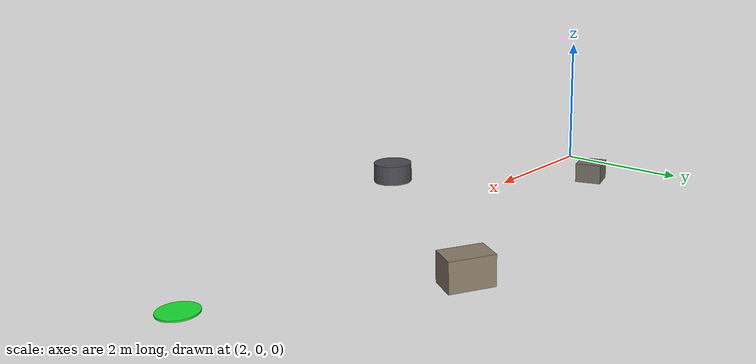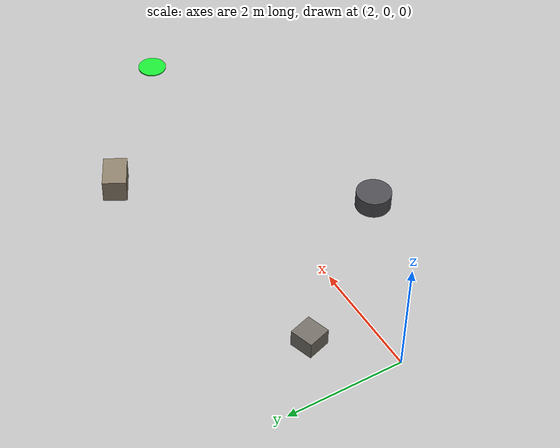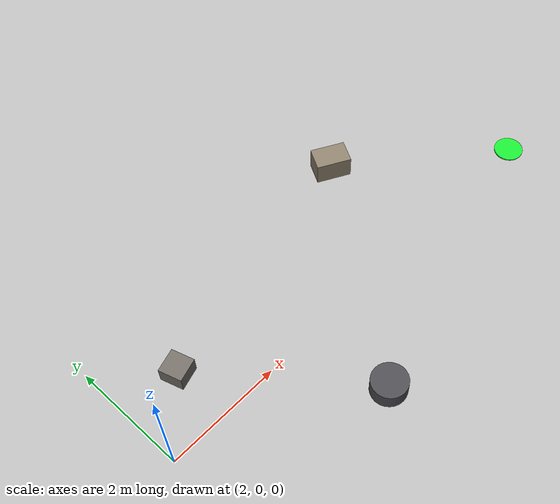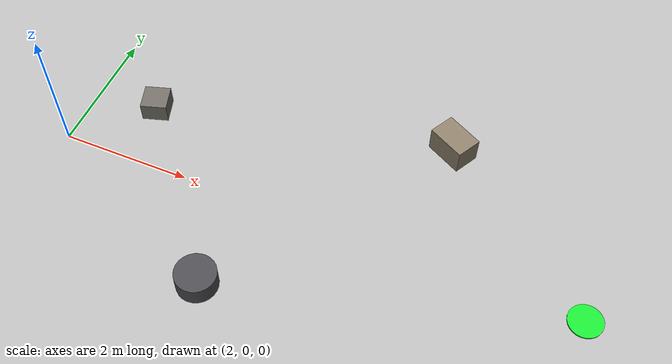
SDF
<sdf version="1.7">
 <world name="outdoor_offroad">
  <include><uri>model://sun</uri></include>
  <model name="rock_1">
   <static>true</static>
   <pose>3 1 0.15 0 0 0.3</pose>
   <link name="link">
    <collision name="collision"><geometry><box><size>0.4 0.4 0.3</size></box></geometry></collision>
    <visual name="visual">
     <geometry><box><size>0.4 0.4 0.3</size></box></geometry>
     <material>
      <ambient>0.45 0.43 0.40 1</ambient>
      <diffuse>0.45 0.43 0.40 1</diffuse>
      <specular>0.02 0.02 0.02 1</specular>
     </material>
    </visual>
   </link>
  </model>
  <model name="rock_2">
   <static>true</static>
   <pose>5 -1.5 0.15 0 0 0</pose>
   <link name="link">
    <collision name="collision">
     <geometry><cylinder><radius>0.3</radius><length>0.3</length></cylinder></geometry>
    </collision>
    <visual name="visual">
     <geometry><cylinder><radius>0.3</radius><length>0.3</length></cylinder></geometry>
     <material>
      <ambient>0.30 0.30 0.32 1</ambient>
      <diffuse>0.30 0.30 0.32 1</diffuse>
      <specular>0.02 0.02 0.02 1</specular>
     </material>
    </visual>
   </link>
  </model>
  <model name="rock_3">
   <static>true</static>
   <pose>7.5 2.0 0.2 0 0 -0.5</pose>
   <link name="link">
    <collision name="collision"><geometry><box><size>0.6 0.4 0.4</size></box></geometry></collision>
    <visual name="visual">
     <geometry><box><size>0.6 0.4 0.4</size></box></geometry>
     <material>
      <ambient>0.55 0.50 0.42 1</ambient>
      <diffuse>0.55 0.50 0.42 1</diffuse>
      <specular>0.02 0.02 0.02 1</specular>
     </material>
    </visual>
   </link>
  </model>
  <model name="goal_marker">
   <static>true</static>
   <pose>10 0 0.01 0 0 0</pose>
   <link name="link">
    <visual name="visual">
     <geometry><cylinder><radius>0.25</radius><length>0.02</length></cylinder></geometry>
     <material>
      <ambient>0.10 0.90 0.20 1</ambient>
      <diffuse>0.10 0.90 0.20 1</diffuse>
      <specular>0.02 0.02 0.02 1</specular>
     </material>
    </visual>
   </link>
  </model>
 </world>
</sdf>
